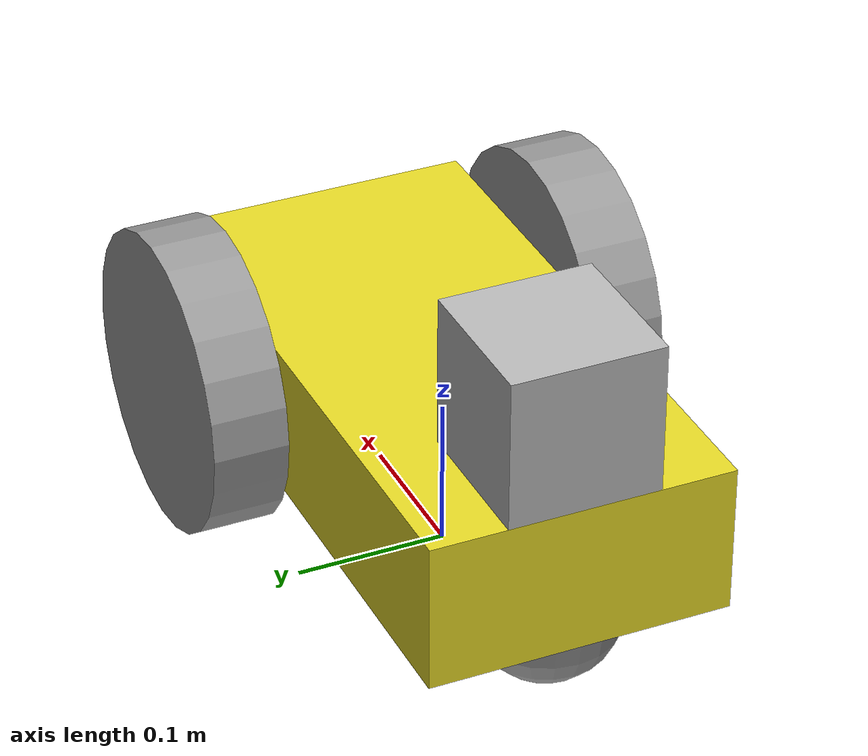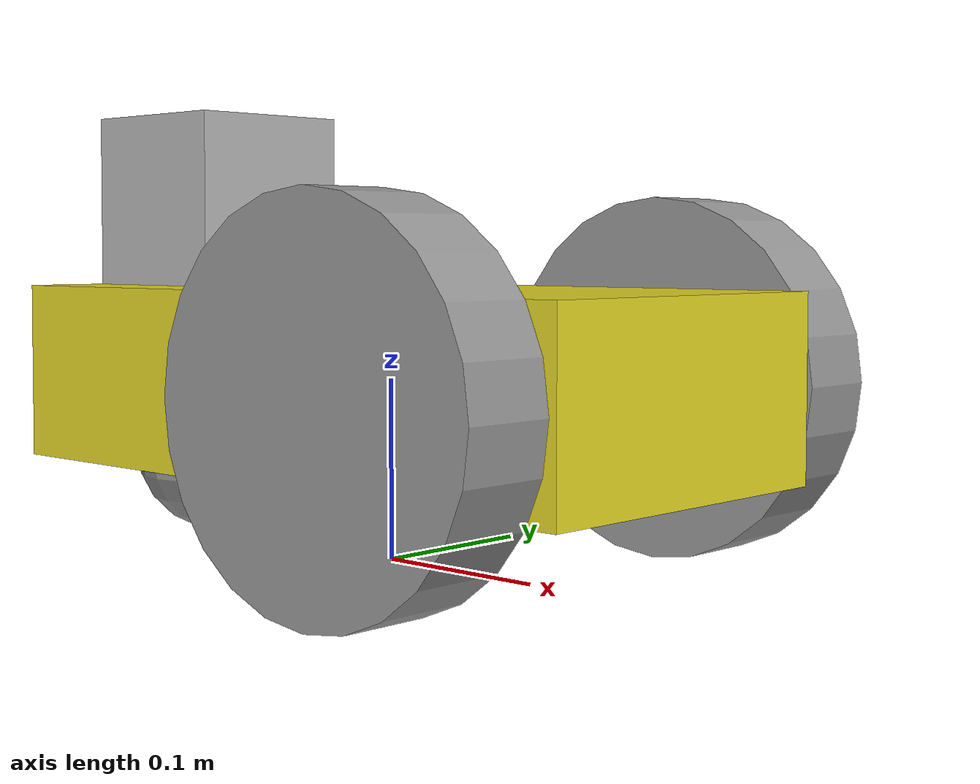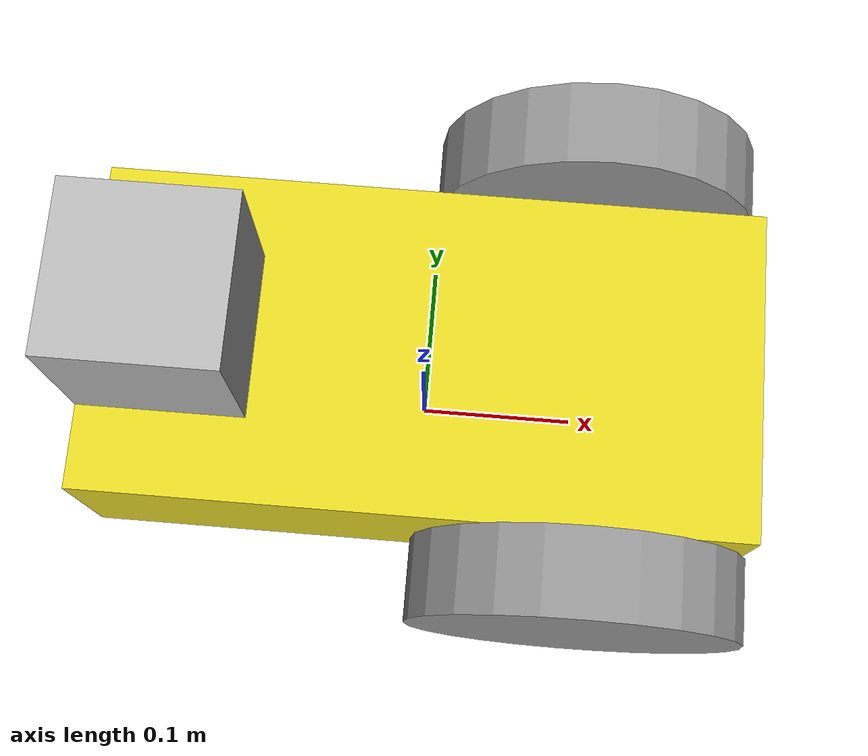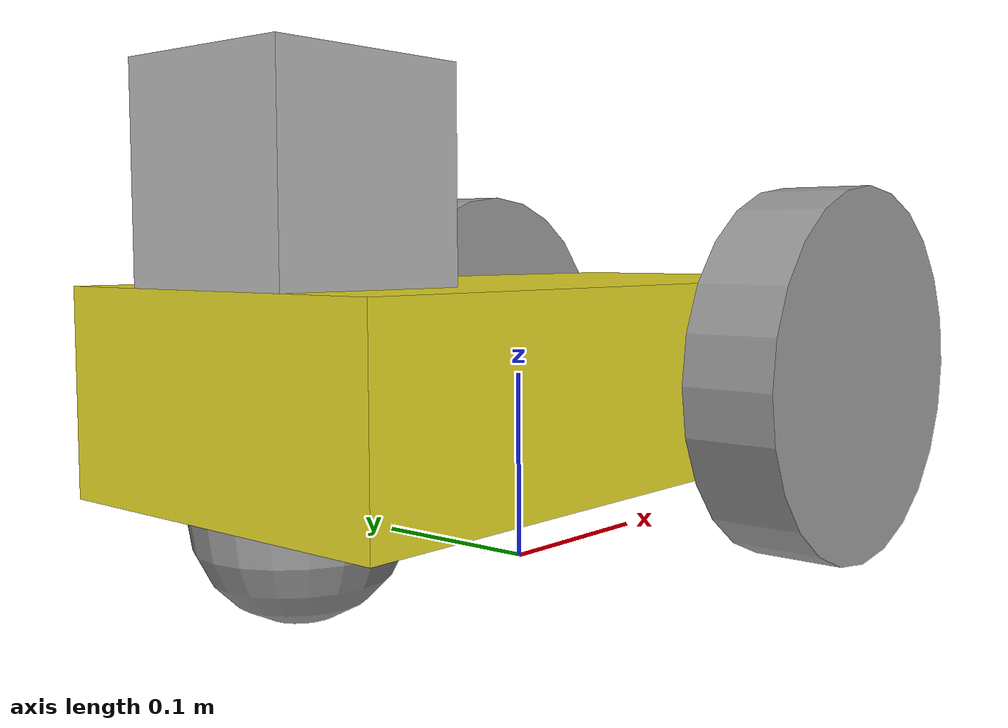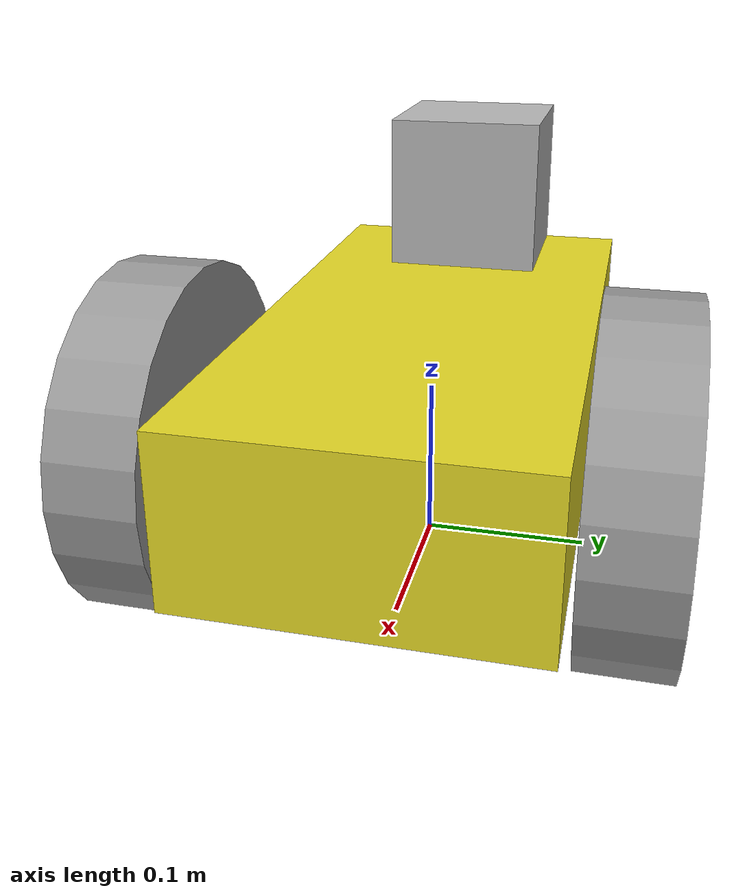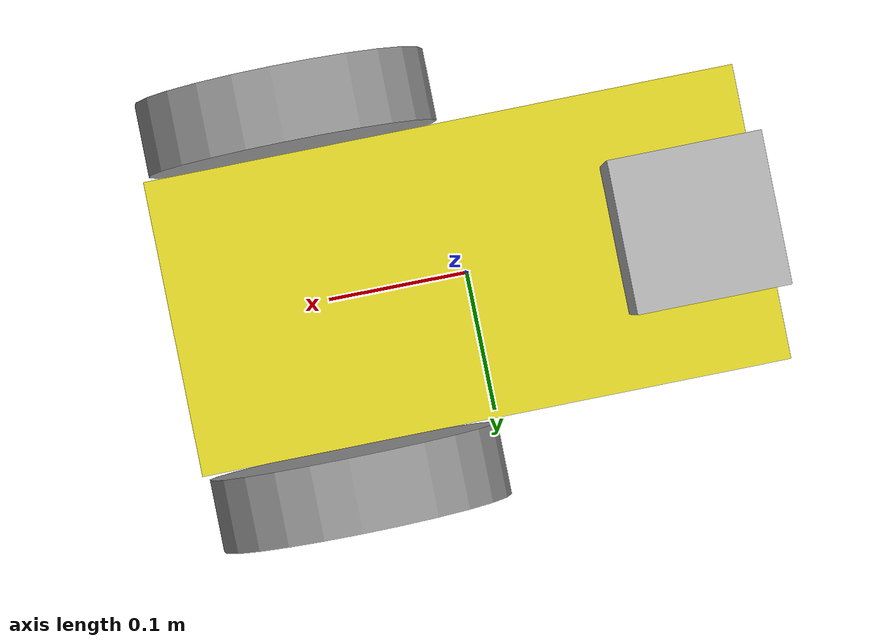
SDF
<?xml version='1.0'?>
<sdf version='1.6'>
  <model name="MobRob">
    <static>false</static>

    <link name='chassis'>
      <pose>0 0 .1 0 0 0</pose>

      <collision name='chassis_collision'>
        <geometry>
          <box>
            <size>.2 .1 .1</size>
          </box>
        </geometry>
      </collision>

      <visual name='visual'>
        <geometry>
          <box>
            <size>.4 .2 .1</size>
          </box>
        </geometry>
        <material>
          <script>
            <name>Gazebo/Yellow</name>
            <uri>file://media/materials/scripts/gazebo.material</uri>
          </script>
        </material>
      </visual>

      <!-- Collision sensor -->
      <sensor name='contact_sensor_chassis' type='contact'>
        <contact>
          <collision>chassis_collision</collision>
        </contact>
        <always_on>1</always_on>
        <update_rate>1000.0</update_rate>
      </sensor>

      <collision name='caster_collision'>
        <pose>-0.15 0 -0.05 0 0 0</pose>
        <geometry>
            <sphere>
            <radius>.05</radius>
          </sphere>
        </geometry>

        <surface>
          <friction>
            <ode>
              <mu>0</mu>
              <mu2>0</mu2>
              <slip1>1.0</slip1>
              <slip2>1.0</slip2>
            </ode>
          </friction>
        </surface>
      </collision>

      <visual name='caster_visual'>
        <pose>-0.15 0 -0.05 0 0 0</pose>
        <geometry>
          <sphere>
            <radius>.05</radius>
          </sphere>
        </geometry>
        <material>
          <script>
            <name>Gazebo/Gray</name>
            <uri>file://media/materials/scripts/gazebo.material</uri>
          </script>
        </material>
      </visual>
    </link>

    <link name="left_wheel">
      <pose>0.1 -0.13 0.1 0 1.5707 1.5707</pose>
      <collision name="left_wheel_collision">
        <geometry>
          <cylinder>
            <radius>.1</radius>
            <length>.05</length>
          </cylinder>
        </geometry>
      </collision>
      <visual name="visual">
        <geometry>
          <cylinder>
            <radius>.1</radius>
            <length>.05</length>
          </cylinder>
        </geometry>
        <material>
          <script>
            <name>Gazebo/Gray</name>
            <uri>file://media/materials/scripts/gazebo.material</uri>
          </script>
        </material>
      </visual>
      <!-- Collision sensor -->
      <sensor name='contact_sensor_wheel_left' type='contact'>
        <contact>
          <collision>left_wheel_collision</collision>
        </contact>
        <always_on>1</always_on>
        <update_rate>1000.0</update_rate>
      </sensor>
    </link>

    <link name="right_wheel">
      <pose>0.1 0.13 0.1 0 1.5707 1.5707</pose>
      <collision name="right_wheel_collision">
        <geometry>
          <cylinder>
            <radius>.1</radius>
            <length>.05</length>
          </cylinder>
        </geometry>
      </collision>
      <visual name="visual">
        <geometry>
          <cylinder>
            <radius>.1</radius>
            <length>.05</length>
          </cylinder>
        </geometry>
        <material>
          <script>
            <name>Gazebo/Gray</name>
            <uri>file://media/materials/scripts/gazebo.material</uri>
          </script>
        </material>
      </visual>
      <!-- Collision sensor -->
      <sensor name='contact_sensor_wheel_right' type='contact'>
        <contact>
          <collision>right_wheel_collision</collision>
        </contact>
        <always_on>1</always_on>
        <update_rate>1000.0</update_rate>
      </sensor>
    </link>

    <joint type="revolute" name="left_wheel_hinge">
      <pose>0 0 -0.03 0 0 0</pose>
      <child>left_wheel</child>
      <parent>chassis</parent>
      <axis>
        <xyz>0 1 0</xyz>
      </axis>
    </joint>

    <joint type="revolute" name="right_wheel_hinge">
      <pose>0 0 0.03 0 0 0</pose>
      <child>right_wheel</child>
      <parent>chassis</parent>
      <axis>
        <xyz>0 1 0</xyz>
      </axis>
    </joint>

    <include>
      <uri>model://camera</uri>
      <pose>-0.15 0 0.2 0 0 3.14159265359</pose>
      <image>
        <width>1024</width>
        <height>768</height>
      </image>
    </include>
    <joint name="camera_joint" type="fixed">
      <child>camera::link</child>
      <parent>chassis</parent>
    </joint>

  </model>
</sdf>

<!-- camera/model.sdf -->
<sdf version="1.5">
  <model name="camera">
    <pose>0 0 0.05 0 0 0</pose>
    <link name="link">
      <inertial>
        <mass>0.1</mass>
        <inertia>
          <ixx>0.000166667</ixx>
          <iyy>0.000166667</iyy>
          <izz>0.000166667</izz>
        </inertia>
      </inertial>
      <collision name="collision">
        <geometry>
          <box>
            <size>0.1 0.1 0.1</size>
          </box>
        </geometry>
      </collision>
      <visual name="visual">
        <geometry>
          <box>
            <size>0.1 0.1 0.1</size>
          </box>
        </geometry>
      </visual>
      <sensor name="camera" type="camera">
        <camera>
          <horizontal_fov>1.047</horizontal_fov>
          <image>
            <width>320</width>
            <height>240</height>
          </image>
          <clip>
            <near>0.1</near>
            <far>100</far>
          </clip>
        </camera>
        <always_on>1</always_on>
        <update_rate>30</update_rate>
        <visualize>true</visualize>
      </sensor>
    </link>
  </model>
</sdf>
